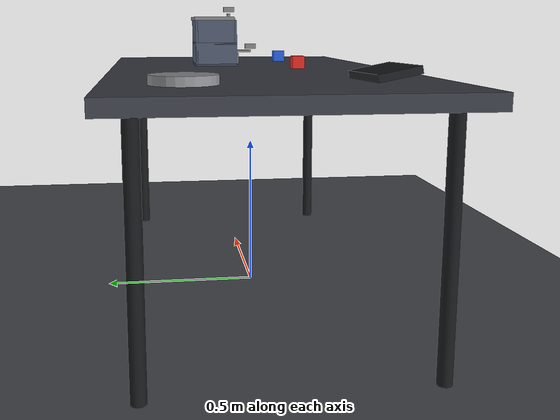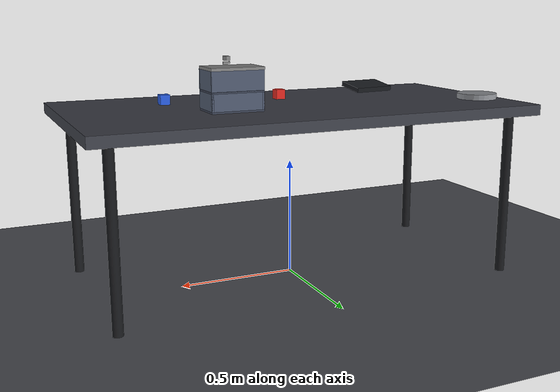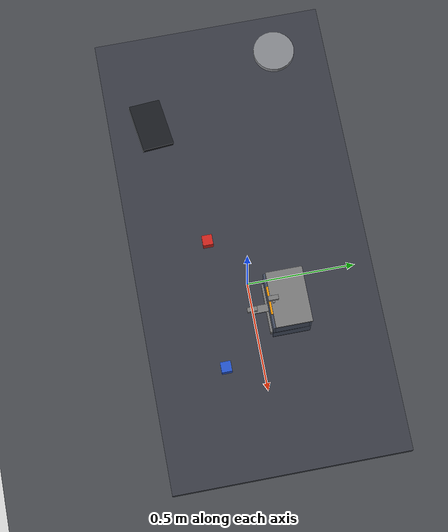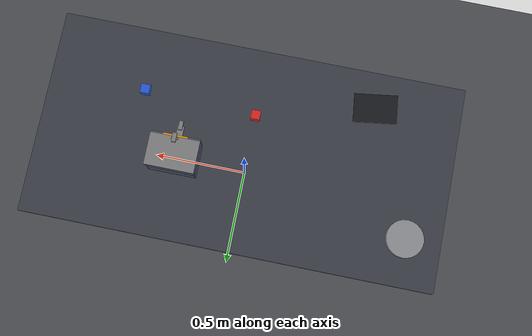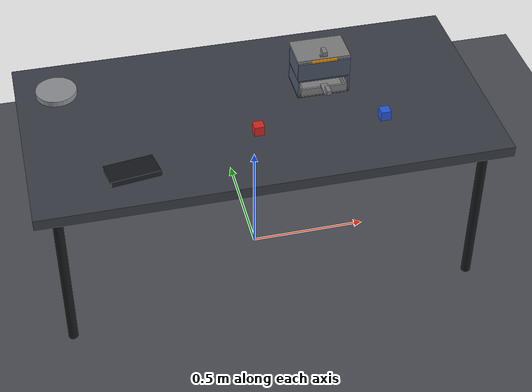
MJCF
<mujoco model="panda_two_tier_sort"><compiler angle="radian" autolimits="true" /><option timestep="0.002" gravity="0 0 -9.81" /><statistic center="0.1 0 0.55" meansize="0.04" extent="2.66" /><visual><headlight ambient="0.45 0.45 0.5" diffuse="0.65 0.65 0.7" specular="0.15 0.15 0.15" /><quality shadowsize="4096" offsamples="8" /><global offwidth="1000" offheight="760" /></visual><asset><texture name="skybox_tex" type="skybox" builtin="gradient" rgb1="0.30 0.38 0.52" rgb2="0.88 0.90 0.93" width="512" height="512" /><material name="skybox_mat" texture="skybox_tex" /><texture name="lab_table_tex" type="2d" builtin="checker" rgb1="0.17 0.18 0.21" rgb2="0.30 0.31 0.35" width="640" height="640" /><material name="lab_table_mat" texture="lab_table_tex" texrepeat="18 10" specular="0.5" shininess="0.4" reflectance="0.08" /><texture name="floor_tex" type="2d" builtin="checker" rgb1="0.26 0.27 0.29" rgb2="0.33 0.34 0.36" width="512" height="512" /><material name="floor_mat" texture="floor_tex" texrepeat="6 6" reflectance="0.12" shininess="0.4" /></asset><worldbody><light name="key_light" pos="1.7 -0.7 2.5" dir="-0.5 0.28 -0.85" directional="true" diffuse="1.0 1.0 1.0" specular="0.25 0.25 0.25" castshadow="true" /><light name="front_fill" pos="0.4 1.4 2.2" dir="-0.02 -0.38 -0.9" directional="true" diffuse="0.42 0.42 0.46" /><light name="fill_light" pos="-1.5 -1.0 1.8" dir="0.5 0.4 -0.7" directional="true" diffuse="0.24 0.24 0.27" /><light name="warm_rim" pos="0.3 -1.2 1.9" dir="0.0 0.35 -0.6" directional="true" diffuse="0.20 0.17 0.13" /><geom name="room_floor" type="plane" size="5 5 0.05" pos="0 0 0.0" material="floor_mat" group="1" /><geom name="table_top" type="box" pos="0 0 0.7275" size="0.95 0.475 0.0225" material="lab_table_mat" friction="0.6 0.008 0.0002" group="1" /><geom name="table_leg_0" type="cylinder" pos="-0.86 -0.385 0.3525" size="0.021 0.3525" rgba="0.09 0.095 0.105 1" /><geom name="table_leg_1" type="cylinder" pos="0.86 -0.385 0.3525" size="0.021 0.3525" rgba="0.09 0.095 0.105 1" /><geom name="table_leg_2" type="cylinder" pos="-0.86 0.385 0.3525" size="0.021 0.3525" rgba="0.09 0.095 0.105 1" /><geom name="table_leg_3" type="cylinder" pos="0.86 0.385 0.3525" size="0.021 0.3525" rgba="0.09 0.095 0.105 1" /><geom name="Control_Panel_Deck" pos="-0.55 -0.3 0.772" type="box" size="0.1 0.065 0.011" quat="0.99377 -0.086927 -0.006077 0.069478" rgba="0.1 0.11 0.125 1" group="1" /><geom name="Desk_Lamp_Base" pos="-0.78 0.26 0.774" type="cylinder" size="0.085 0.012" rgba="0.55 0.56 0.58 1" group="1" /><body name="TierBox" pos="0.3 0.1 0.75"><geom name="housing_bottom" type="box" pos="0 0 0.004" size="0.11 0.075 0.004" rgba="0.22 0.25 0.32 1" group="1" friction="0.5 0.008 0.0002" /><geom name="housing_left" type="box" pos="-0.106 0 0.0465" size="0.004 0.075 0.0385" rgba="0.3 0.34 0.42 1" group="1" /><geom name="housing_right" type="box" pos="0.106 0 0.0465" size="0.004 0.075 0.0385" rgba="0.3 0.34 0.42 1" group="1" /><geom name="housing_back" type="box" pos="0 0.071 0.0465" size="0.11 0.004 0.0385" rgba="0.3 0.34 0.42 1" group="1" /><geom name="housing_top" type="box" pos="0 0 0.081" size="0.11 0.075 0.004" rgba="0.22 0.25 0.32 1" group="1" /><geom name="upper_front" type="box" pos="0 -0.071 0.125" size="0.11 0.004 0.04" rgba="0.3 0.34 0.42 1" group="1" /><geom name="upper_back" type="box" pos="0 0.071 0.125" size="0.11 0.004 0.04" rgba="0.3 0.34 0.42 1" group="1" /><geom name="upper_left" type="box" pos="-0.106 0 0.125" size="0.004 0.067 0.04" rgba="0.3 0.34 0.42 1" group="1" /><geom name="upper_right" type="box" pos="0.106 0 0.125" size="0.004 0.067 0.04" rgba="0.3 0.34 0.42 1" group="1" /><geom name="tier_rim_Front" type="box" pos="0 -0.067 0.167" size="0.055 0.007 0.006" rgba="1 0.62 0 1" contype="0" conaffinity="0" group="2" /><geom name="tier_rim_Back" type="box" pos="0 0.067 0.167" size="0.055 0.007 0.006" rgba="1 0.62 0 1" contype="0" conaffinity="0" group="2" /><geom name="tier_rim_Left" type="box" pos="-0.102 0 0.167" size="0.007 0.0375 0.006" rgba="1 0.62 0 1" contype="0" conaffinity="0" group="2" /><geom name="tier_rim_Right" type="box" pos="0.102 0 0.167" size="0.007 0.0375 0.006" rgba="1 0.62 0 1" contype="0" conaffinity="0" group="2" /></body><body name="Lid" pos="0.3 0.177 0.921"><joint name="lid_hinge" type="hinge" axis="1 0 0" range="-2.1 0" damping="0.020000" /><geom name="lid_panel" type="box" pos="0 -0.0705 0" size="0.111 0.0725 0.006" mass="0.140000" friction="0.600 0.0100 0.000500" /><geom name="lid_panel_vis" type="box" pos="0 -0.0705 0" size="0.111 0.0725 0.006" rgba="0.88 0.89 0.92 1" group="1" contype="0" conaffinity="0" /><geom name="lid_handle_bracket" type="box" pos="0 -0.133 0.015" size="0.015 0.005 0.0045" mass="0.012000" friction="1.000 0.0100 0.000500" /><geom name="lid_handle_bracket_vis" type="box" pos="0 -0.133 0.015" size="0.015 0.005 0.0045" rgba="0.13 0.14 0.16 1" group="1" contype="0" conaffinity="0" /><geom name="lid_handle_bar" type="box" pos="0 -0.133 0.033" size="0.009 0.02 0.009" mass="0.018000" friction="2.000 0.0100 0.000500" /><geom name="lid_handle_bar_vis" type="box" pos="0 -0.133 0.033" size="0.009 0.02 0.009" rgba="0.13 0.14 0.16 1" group="1" contype="0" conaffinity="0" /></body><body name="Drawer" pos="0.3 0.087 0.758"><joint name="drawer_slide" type="slide" axis="0 -1 0" range="0 0.15" damping="0.350000" frictionloss="0.400000" /><geom name="tray_bottom" type="box" pos="0 0 0.003" size="0.098 0.07 0.003" mass="0.140000" friction="0.500 0.0080 0.000200" /><geom name="tray_bottom_vis" type="box" pos="0 0 0.003" size="0.098 0.07 0.003" rgba="0.55 0.38 0.16 1" group="1" contype="0" conaffinity="0" /><geom name="tray_front" type="box" pos="0 -0.066 0.022" size="0.098 0.004 0.016" mass="0.030000" /><geom name="tray_front_vis" type="box" pos="0 -0.066 0.022" size="0.098 0.004 0.016" rgba="0.55 0.38 0.16 1" group="1" contype="0" conaffinity="0" /><geom name="tray_back" type="box" pos="0 0.066 0.022" size="0.098 0.004 0.016" mass="0.030000" /><geom name="tray_back_vis" type="box" pos="0 0.066 0.022" size="0.098 0.004 0.016" rgba="0.55 0.38 0.16 1" group="1" contype="0" conaffinity="0" /><geom name="tray_left" type="box" pos="-0.094 0 0.022" size="0.004 0.062 0.016" mass="0.030000" /><geom name="tray_left_vis" type="box" pos="-0.094 0 0.022" size="0.004 0.062 0.016" rgba="0.55 0.38 0.16 1" group="1" contype="0" conaffinity="0" /><geom name="tray_right" type="box" pos="0.094 0 0.022" size="0.004 0.062 0.016" mass="0.030000" /><geom name="tray_right_vis" type="box" pos="0.094 0 0.022" size="0.004 0.062 0.016" rgba="0.55 0.38 0.16 1" group="1" contype="0" conaffinity="0" /><geom name="drawer_handle_bracket" type="box" pos="0 -0.0925 0.0425" size="0.015 0.033 0.0045" mass="0.012000" friction="1.000 0.0100 0.000500" /><geom name="drawer_handle_bracket_vis" type="box" pos="0 -0.0925 0.0425" size="0.015 0.033 0.0045" rgba="0.13 0.14 0.16 1" group="1" contype="0" conaffinity="0" /><geom name="drawer_handle_bar" type="box" pos="0 -0.125 0.0605" size="0.009 0.02 0.009" mass="0.018000" friction="2.000 0.0100 0.000500" /><geom name="drawer_handle_bar_vis" type="box" pos="0 -0.125 0.0605" size="0.009 0.02 0.009" rgba="0.13 0.14 0.16 1" group="1" contype="0" conaffinity="0" /></body><body name="RedCube" pos="-0.02 -0.16 0.773"><freejoint name="RedCube_free" /><geom name="RedCube_geom" type="box" size="0.021 0.021 0.021" mass="0.050000" rgba="0.85 0.15 0.12 1" group="1" friction="2.000 0.0080 0.000200" /></body><body name="BlueCube" pos="0.5 -0.18 0.773"><freejoint name="BlueCube_free" /><geom name="BlueCube_geom" type="box" size="0.021 0.021 0.021" mass="0.050000" rgba="0.15 0.35 0.85 1" group="1" friction="2.000 0.0080 0.000200" /></body><camera name="agentview" pos="0.02 -0.62 1.22" xyaxes="0.909474 -0.41576 0 0.226492 0.495452 0.838587" fovy="50" /><camera name="sideview" pos="1.15 -0.35 1.12" xyaxes="0.399121 0.916898 0 -0.299177 0.13023 0.945269" fovy="40" /></worldbody><actuator /></mujoco>
